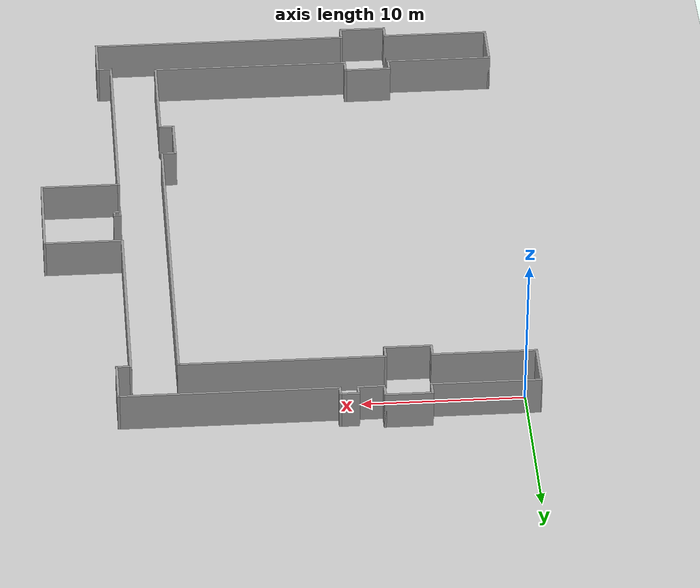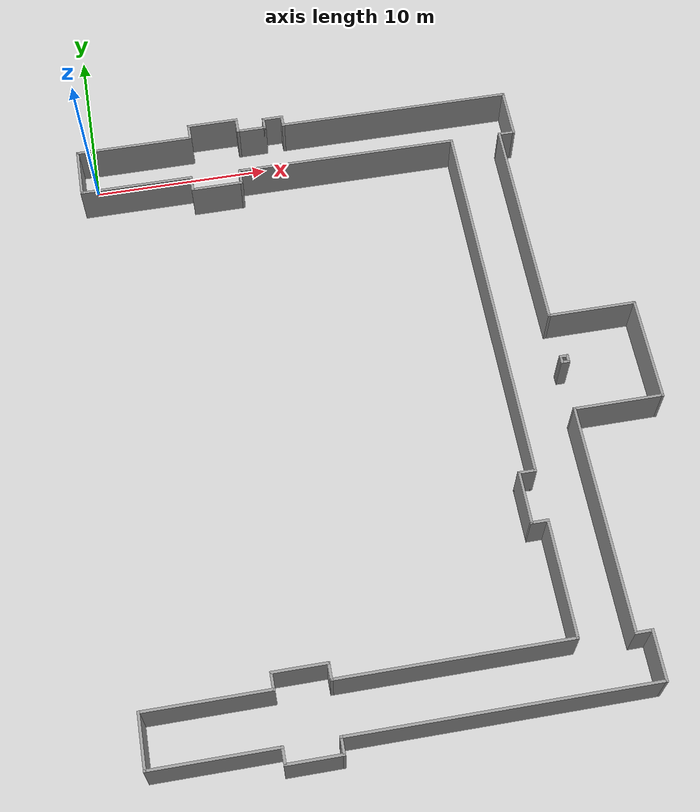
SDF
<?xml version="1.0"?>
<sdf version="1.4">
<world name="racecar_tunnel">

  <include>
    <uri>model://sun</uri>
  </include>

  <gui>
    <camera name='main'>
      <pose>0 0 10 0 1.571 0</pose>
    </camera>
  </gui>

  <model name="ground_plane">
    <static>true</static>
    <link name="link">
      <collision name="collision">
        <geometry>
          <plane>
            <normal>0 0 1</normal>
            <size>150 150</size>
          </plane>
        </geometry>
        <surface>
          <friction>
            <ode>
              <mu>100</mu>
              <mu2>50</mu2>
            </ode>
          </friction>
        </surface>
      </collision>
      <visual name="visual">
        <cast_shadows>false</cast_shadows>
        <geometry>
          <plane>
            <normal>0 0 1</normal>
            <size>150 150</size>
          </plane>
        </geometry>
        <material>
          <script>
            <uri>file://media/materials/scripts/gazebo.material</uri>
            <name>Gazebo/Grey</name>
          </script>
        </material>
      </visual>
    </link>
  </model>

  <include>
    <uri>model://racecar_description/models/hallway_model</uri>
    <pose>14 -16.9 0 0 0 4.712</pose>
  </include>

</world>
</sdf>

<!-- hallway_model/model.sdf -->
<sdf version='1.6'>
  <model name='hallway_model'>
    <pose frame=''>0.022425 -0.089331 0 0 -0 0</pose>
    <link name='Wall_0'>
      <collision name='Wall_0_Collision'>
        <geometry>
          <box>
            <size>3 0.15 2.5</size>
          </box>
        </geometry>
        <pose frame=''>0 0 1.25 0 -0 0</pose>
      </collision>
      <visual name='Wall_0_Visual'>
        <pose frame=''>0 0 1.25 0 -0 0</pose>
        <geometry>
          <box>
            <size>3 0.15 2.5</size>
          </box>
        </geometry>
        <material>
          <script>
            <uri>file://media/materials/scripts/gazebo.material</uri>
            <name>Gazebo/Grey</name>
          </script>
          <ambient>1 1 1 1</ambient>
        </material>
        <meta>
          <layer>0</layer>
        </meta>
      </visual>
      <pose frame=''>-16.825 -14.775 0 0 -0 0</pose>
    </link>
    <link name='Wall_1'>
      <collision name='Wall_1_Collision'>
        <geometry>
          <box>
            <size>6.5 0.15 2.5</size>
          </box>
        </geometry>
        <pose frame=''>0 0 1.25 0 -0 0</pose>
      </collision>
      <visual name='Wall_1_Visual'>
        <pose frame=''>0 0 1.25 0 -0 0</pose>
        <geometry>
          <box>
            <size>6.5 0.15 2.5</size>
          </box>
        </geometry>
        <material>
          <script>
            <uri>file://media/materials/scripts/gazebo.material</uri>
            <name>Gazebo/Grey</name>
          </script>
          <ambient>1 1 1 1</ambient>
        </material>
        <meta>
          <layer>0</layer>
        </meta>
      </visual>
      <pose frame=''>-15.4 -11.6 0 0 -0 1.5708</pose>
    </link>
    <link name='Wall_10'>
      <collision name='Wall_10_Collision'>
        <geometry>
          <box>
            <size>21.75 0.15 2.5</size>
          </box>
        </geometry>
        <pose frame=''>0 0 1.25 0 -0 0</pose>
      </collision>
      <visual name='Wall_10_Visual'>
        <pose frame=''>0 0 1.25 0 -0 0</pose>
        <geometry>
          <box>
            <size>21.75 0.15 2.5</size>
          </box>
        </geometry>
        <material>
          <script>
            <uri>file://media/materials/scripts/gazebo.material</uri>
            <name>Gazebo/Grey</name>
          </script>
          <ambient>1 1 1 1</ambient>
        </material>
        <meta>
          <layer>0</layer>
        </meta>
      </visual>
      <pose frame=''>-4.6 7.025 0 0 -0 0</pose>
    </link>
    <link name='Wall_11'>
      <collision name='Wall_11_Collision'>
        <geometry>
          <box>
            <size>1 0.15 2.5</size>
          </box>
        </geometry>
        <pose frame=''>0 0 1.25 0 -0 0</pose>
      </collision>
      <visual name='Wall_11_Visual'>
        <pose frame=''>0 0 1.25 0 -0 0</pose>
        <geometry>
          <box>
            <size>1 0.15 2.5</size>
          </box>
        </geometry>
        <material>
          <script>
            <uri>file://media/materials/scripts/gazebo.material</uri>
            <name>Gazebo/Grey</name>
          </script>
          <ambient>1 1 1 1</ambient>
        </material>
        <meta>
          <layer>0</layer>
        </meta>
      </visual>
      <pose frame=''>6.2 6.6 0 0 -0 -1.5708</pose>
    </link>
    <link name='Wall_12'>
      <collision name='Wall_12_Collision'>
        <geometry>
          <box>
            <size>3 0.15 2.5</size>
          </box>
        </geometry>
        <pose frame=''>0 0 1.25 0 -0 0</pose>
      </collision>
      <visual name='Wall_12_Visual'>
        <pose frame=''>0 0 1.25 0 -0 0</pose>
        <geometry>
          <box>
            <size>3 0.15 2.5</size>
          </box>
        </geometry>
        <material>
          <script>
            <uri>file://media/materials/scripts/gazebo.material</uri>
            <name>Gazebo/Grey</name>
          </script>
          <ambient>1 1 1 1</ambient>
        </material>
        <meta>
          <layer>0</layer>
        </meta>
      </visual>
      <pose frame=''>7.625 6.175 0 0 -0 0</pose>
    </link>
    <link name='Wall_13'>
      <collision name='Wall_13_Collision'>
        <geometry>
          <box>
            <size>1 0.15 2.5</size>
          </box>
        </geometry>
        <pose frame=''>0 0 1.25 0 -0 0</pose>
      </collision>
      <visual name='Wall_13_Visual'>
        <pose frame=''>0 0 1.25 0 -0 0</pose>
        <geometry>
          <box>
            <size>1 0.15 2.5</size>
          </box>
        </geometry>
        <material>
          <script>
            <uri>file://media/materials/scripts/gazebo.material</uri>
            <name>Gazebo/Grey</name>
          </script>
          <ambient>1 1 1 1</ambient>
        </material>
        <meta>
          <layer>0</layer>
        </meta>
      </visual>
      <pose frame=''>9.05 6.6 0 0 -0 1.5708</pose>
    </link>
    <link name='Wall_14'>
      <collision name='Wall_14_Collision'>
        <geometry>
          <box>
            <size>6.5 0.15 2.5</size>
          </box>
        </geometry>
        <pose frame=''>0 0 1.25 0 -0 0</pose>
      </collision>
      <visual name='Wall_14_Visual'>
        <pose frame=''>0 0 1.25 0 -0 0</pose>
        <geometry>
          <box>
            <size>6.5 0.15 2.5</size>
          </box>
        </geometry>
        <material>
          <script>
            <uri>file://media/materials/scripts/gazebo.material</uri>
            <name>Gazebo/Grey</name>
          </script>
          <ambient>1 1 1 1</ambient>
        </material>
        <meta>
          <layer>0</layer>
        </meta>
      </visual>
      <pose frame=''>12.225 7.025 0 0 -0 0</pose>
    </link>
    <link name='Wall_15'>
      <collision name='Wall_15_Collision'>
        <geometry>
          <box>
            <size>12.5 0.15 2.5</size>
          </box>
        </geometry>
        <pose frame=''>0 0 1.25 0 -0 0</pose>
      </collision>
      <visual name='Wall_15_Visual'>
        <pose frame=''>0 0 1.25 0 -0 0</pose>
        <geometry>
          <box>
            <size>12.5 0.15 2.5</size>
          </box>
        </geometry>
        <material>
          <script>
            <uri>file://media/materials/scripts/gazebo.material</uri>
            <name>Gazebo/Grey</name>
          </script>
          <ambient>1 1 1 1</ambient>
        </material>
        <meta>
          <layer>0</layer>
        </meta>
      </visual>
      <pose frame=''>15.4 0.85 0 0 -0 -1.5708</pose>
    </link>
    <link name='Wall_16'>
      <collision name='Wall_16_Collision'>
        <geometry>
          <box>
            <size>1 0.15 2.5</size>
          </box>
        </geometry>
        <pose frame=''>0 0 1.25 0 -0 0</pose>
      </collision>
      <visual name='Wall_16_Visual'>
        <pose frame=''>0 0 1.25 0 -0 0</pose>
        <geometry>
          <box>
            <size>1 0.15 2.5</size>
          </box>
        </geometry>
        <material>
          <script>
            <uri>file://media/materials/scripts/gazebo.material</uri>
            <name>Gazebo/Grey</name>
          </script>
          <ambient>1 1 1 1</ambient>
        </material>
        <meta>
          <layer>0</layer>
        </meta>
      </visual>
      <pose frame=''>14.975 -5.325 0 0 -0 3.14159</pose>
    </link>
    <link name='Wall_17'>
      <collision name='Wall_17_Collision'>
        <geometry>
          <box>
            <size>3 0.15 2.5</size>
          </box>
        </geometry>
        <pose frame=''>0 0 1.25 0 -0 0</pose>
      </collision>
      <visual name='Wall_17_Visual'>
        <pose frame=''>0 0 1.25 0 -0 0</pose>
        <geometry>
          <box>
            <size>3 0.15 2.5</size>
          </box>
        </geometry>
        <material>
          <script>
            <uri>file://media/materials/scripts/gazebo.material</uri>
            <name>Gazebo/Grey</name>
          </script>
          <ambient>1 1 1 1</ambient>
        </material>
        <meta>
          <layer>0</layer>
        </meta>
      </visual>
      <pose frame=''>14.55 -6.75 0 0 -0 -1.5708</pose>
    </link>
    <link name='Wall_18'>
      <collision name='Wall_18_Collision'>
        <geometry>
          <box>
            <size>1 0.15 2.5</size>
          </box>
        </geometry>
        <pose frame=''>0 0 1.25 0 -0 0</pose>
      </collision>
      <visual name='Wall_18_Visual'>
        <pose frame=''>0 0 1.25 0 -0 0</pose>
        <geometry>
          <box>
            <size>1 0.15 2.5</size>
          </box>
        </geometry>
        <material>
          <script>
            <uri>file://media/materials/scripts/gazebo.material</uri>
            <name>Gazebo/Grey</name>
          </script>
          <ambient>1 1 1 1</ambient>
        </material>
        <meta>
          <layer>0</layer>
        </meta>
      </visual>
      <pose frame=''>14.975 -8.175 0 0 -0 0</pose>
    </link>
    <link name='Wall_19'>
      <collision name='Wall_19_Collision'>
        <geometry>
          <box>
            <size>6.75 0.15 2.5</size>
          </box>
        </geometry>
        <pose frame=''>0 0 1.25 0 -0 0</pose>
      </collision>
      <visual name='Wall_19_Visual'>
        <pose frame=''>0 0 1.25 0 -0 0</pose>
        <geometry>
          <box>
            <size>6.75 0.15 2.5</size>
          </box>
        </geometry>
        <material>
          <script>
            <uri>file://media/materials/scripts/gazebo.material</uri>
            <name>Gazebo/Grey</name>
          </script>
          <ambient>1 1 1 1</ambient>
        </material>
        <meta>
          <layer>0</layer>
        </meta>
      </visual>
      <pose frame=''>15.4 -11.475 0 0 -0 -1.5708</pose>
    </link>
    <link name='Wall_2'>
      <collision name='Wall_2_Collision'>
        <geometry>
          <box>
            <size>1 0.15 2.5</size>
          </box>
        </geometry>
        <pose frame=''>0 0 1.25 0 -0 0</pose>
      </collision>
      <visual name='Wall_2_Visual'>
        <pose frame=''>0 0 1.25 0 -0 0</pose>
        <geometry>
          <box>
            <size>1 0.15 2.5</size>
          </box>
        </geometry>
        <material>
          <script>
            <uri>file://media/materials/scripts/gazebo.material</uri>
            <name>Gazebo/Grey</name>
          </script>
          <ambient>1 1 1 1</ambient>
        </material>
        <meta>
          <layer>0</layer>
        </meta>
      </visual>
      <pose frame=''>-14.975 -8.425 0 0 -0 0</pose>
    </link>
    <link name='Wall_20'>
      <collision name='Wall_20_Collision'>
        <geometry>
          <box>
            <size>3 0.15 2.5</size>
          </box>
        </geometry>
        <pose frame=''>0 0 1.25 0 -0 0</pose>
      </collision>
      <visual name='Wall_20_Visual'>
        <pose frame=''>0 0 1.25 0 -0 0</pose>
        <geometry>
          <box>
            <size>3 0.15 2.5</size>
          </box>
        </geometry>
        <material>
          <script>
            <uri>file://media/materials/scripts/gazebo.material</uri>
            <name>Gazebo/Grey</name>
          </script>
          <ambient>1 1 1 1</ambient>
        </material>
        <meta>
          <layer>0</layer>
        </meta>
      </visual>
      <pose frame=''>16.825 -14.775 0 0 -0 0</pose>
    </link>
    <link name='Wall_21'>
      <collision name='Wall_21_Collision'>
        <geometry>
          <box>
            <size>6.75 0.15 2.5</size>
          </box>
        </geometry>
        <pose frame=''>0 0 1.25 0 -0 0</pose>
      </collision>
      <visual name='Wall_21_Visual'>
        <pose frame=''>0 0 1.25 0 -0 0</pose>
        <geometry>
          <box>
            <size>6.75 0.15 2.5</size>
          </box>
        </geometry>
        <material>
          <script>
            <uri>file://media/materials/scripts/gazebo.material</uri>
            <name>Gazebo/Grey</name>
          </script>
          <ambient>1 1 1 1</ambient>
        </material>
        <meta>
          <layer>0</layer>
        </meta>
      </visual>
      <pose frame=''>18.25 -11.475 0 0 -0 1.5708</pose>
    </link>
    <link name='Wall_22'>
      <collision name='Wall_22_Collision'>
        <geometry>
          <box>
            <size>1 0.15 2.5</size>
          </box>
        </geometry>
        <pose frame=''>0 0 1.25 0 -0 0</pose>
      </collision>
      <visual name='Wall_22_Visual'>
        <pose frame=''>0 0 1.25 0 -0 0</pose>
        <geometry>
          <box>
            <size>1 0.15 2.5</size>
          </box>
        </geometry>
        <material>
          <script>
            <uri>file://media/materials/scripts/gazebo.material</uri>
            <name>Gazebo/Grey</name>
          </script>
          <ambient>1 1 1 1</ambient>
        </material>
        <meta>
          <layer>0</layer>
        </meta>
      </visual>
      <pose frame=''>18.675 -8.175 0 0 -0 0</pose>
    </link>
    <link name='Wall_23'>
      <collision name='Wall_23_Collision'>
        <geometry>
          <box>
            <size>3 0.15 2.5</size>
          </box>
        </geometry>
        <pose frame=''>0 0 1.25 0 -0 0</pose>
      </collision>
      <visual name='Wall_23_Visual'>
        <pose frame=''>0 0 1.25 0 -0 0</pose>
        <geometry>
          <box>
            <size>3 0.15 2.5</size>
          </box>
        </geometry>
        <material>
          <script>
            <uri>file://media/materials/scripts/gazebo.material</uri>
            <name>Gazebo/Grey</name>
          </script>
          <ambient>1 1 1 1</ambient>
        </material>
        <meta>
          <layer>0</layer>
        </meta>
      </visual>
      <pose frame=''>19.1 -6.75 0 0 -0 1.5708</pose>
    </link>
    <link name='Wall_26'>
      <collision name='Wall_26_Collision'>
        <geometry>
          <box>
            <size>1 0.15 2.5</size>
          </box>
        </geometry>
        <pose frame=''>0 0 1.25 0 -0 0</pose>
      </collision>
      <visual name='Wall_26_Visual'>
        <pose frame=''>0 0 1.25 0 -0 0</pose>
        <geometry>
          <box>
            <size>1 0.15 2.5</size>
          </box>
        </geometry>
        <material>
          <script>
            <uri>file://media/materials/scripts/gazebo.material</uri>
            <name>Gazebo/Grey</name>
          </script>
          <ambient>1 1 1 1</ambient>
        </material>
        <meta>
          <layer>0</layer>
        </meta>
      </visual>
      <pose frame=''>18.675 -5.325 0 0 -0 3.14159</pose>
    </link>
    <link name='Wall_27'>
      <collision name='Wall_27_Collision'>
        <geometry>
          <box>
            <size>16.25 0.15 2.5</size>
          </box>
        </geometry>
        <pose frame=''>0 0 1.25 0 -0 0</pose>
      </collision>
      <visual name='Wall_27_Visual'>
        <pose frame=''>0 0 1.25 0 -0 0</pose>
        <geometry>
          <box>
            <size>16.25 0.15 2.5</size>
          </box>
        </geometry>
        <material>
          <script>
            <uri>file://media/materials/scripts/gazebo.material</uri>
            <name>Gazebo/Grey</name>
          </script>
          <ambient>1 1 1 1</ambient>
        </material>
        <meta>
          <layer>0</layer>
        </meta>
      </visual>
      <pose frame=''>18.25 2.725 0 0 -0 1.5708</pose>
    </link>
    <link name='Wall_28'>
      <collision name='Wall_28_Collision'>
        <geometry>
          <box>
            <size>2.75 0.15 2.5</size>
          </box>
        </geometry>
        <pose frame=''>0 0 1.25 0 -0 0</pose>
      </collision>
      <visual name='Wall_28_Visual'>
        <pose frame=''>0 0 1.25 0 -0 0</pose>
        <geometry>
          <box>
            <size>2.75 0.15 2.5</size>
          </box>
        </geometry>
        <material>
          <script>
            <uri>file://media/materials/scripts/gazebo.material</uri>
            <name>Gazebo/Grey</name>
          </script>
          <ambient>1 1 1 1</ambient>
        </material>
        <meta>
          <layer>0</layer>
        </meta>
      </visual>
      <pose frame=''>16.95 10.775 0 0 -0 3.14159</pose>
    </link>
    <link name='Wall_29'>
      <collision name='Wall_29_Collision'>
        <geometry>
          <box>
            <size>1 0.15 2.5</size>
          </box>
        </geometry>
        <pose frame=''>0 0 1.25 0 -0 0</pose>
      </collision>
      <visual name='Wall_29_Visual'>
        <pose frame=''>0 0 1.25 0 -0 0</pose>
        <geometry>
          <box>
            <size>1 0.15 2.5</size>
          </box>
        </geometry>
        <material>
          <script>
            <uri>file://media/materials/scripts/gazebo.material</uri>
            <name>Gazebo/Grey</name>
          </script>
          <ambient>1 1 1 1</ambient>
        </material>
        <meta>
          <layer>0</layer>
        </meta>
      </visual>
      <pose frame=''>15.65 10.35 0 0 -0 -1.5708</pose>
    </link>
    <link name='Wall_3'>
      <collision name='Wall_3_Collision'>
        <geometry>
          <box>
            <size>3 0.15 2.5</size>
          </box>
        </geometry>
        <pose frame=''>0 0 1.25 0 -0 0</pose>
      </collision>
      <visual name='Wall_3_Visual'>
        <pose frame=''>0 0 1.25 0 -0 0</pose>
        <geometry>
          <box>
            <size>3 0.15 2.5</size>
          </box>
        </geometry>
        <material>
          <script>
            <uri>file://media/materials/scripts/gazebo.material</uri>
            <name>Gazebo/Grey</name>
          </script>
          <ambient>1 1 1 1</ambient>
        </material>
        <meta>
          <layer>0</layer>
        </meta>
      </visual>
      <pose frame=''>-14.55 -7 0 0 -0 1.5708</pose>
    </link>
    <link name='Wall_30'>
      <collision name='Wall_30_Collision'>
        <geometry>
          <box>
            <size>12.75 0.15 2.5</size>
          </box>
        </geometry>
        <pose frame=''>0 0 1.25 0 -0 0</pose>
      </collision>
      <visual name='Wall_30_Visual'>
        <pose frame=''>0 0 1.25 0 -0 0</pose>
        <geometry>
          <box>
            <size>12.75 0.15 2.5</size>
          </box>
        </geometry>
        <material>
          <script>
            <uri>file://media/materials/scripts/gazebo.material</uri>
            <name>Gazebo/Grey</name>
          </script>
          <ambient>1 1 1 1</ambient>
        </material>
        <meta>
          <layer>0</layer>
        </meta>
      </visual>
      <pose frame=''>9.35 9.925 0 0 -0 3.14159</pose>
    </link>
    <link name='Wall_31'>
      <collision name='Wall_31_Collision'>
        <geometry>
          <box>
            <size>5 0.15 2.5</size>
          </box>
        </geometry>
        <pose frame=''>0 0 1.25 0 -0 0</pose>
      </collision>
      <visual name='Wall_31_Visual'>
        <pose frame=''>0 0 1.25 0 -0 0</pose>
        <geometry>
          <box>
            <size>5 0.15 2.5</size>
          </box>
        </geometry>
        <material>
          <script>
            <uri>file://media/materials/scripts/gazebo.material</uri>
            <name>Gazebo/Grey</name>
          </script>
          <ambient>1 1 1 1</ambient>
        </material>
        <meta>
          <layer>0</layer>
        </meta>
      </visual>
      <pose frame=''>3.05 12.35 0 0 -0 1.5708</pose>
    </link>
    <link name='Wall_32'>
      <collision name='Wall_32_Collision'>
        <geometry>
          <box>
            <size>6 0.15 2.5</size>
          </box>
        </geometry>
        <pose frame=''>0 0 1.25 0 -0 0</pose>
      </collision>
      <visual name='Wall_32_Visual'>
        <pose frame=''>0 0 1.25 0 -0 0</pose>
        <geometry>
          <box>
            <size>6 0.15 2.5</size>
          </box>
        </geometry>
        <material>
          <script>
            <uri>file://media/materials/scripts/gazebo.material</uri>
            <name>Gazebo/Grey</name>
          </script>
          <ambient>1 1 1 1</ambient>
        </material>
        <meta>
          <layer>0</layer>
        </meta>
      </visual>
      <pose frame=''>0.125001 14.775 0 0 -0 3.14159</pose>
    </link>
    <link name='Wall_33'>
      <collision name='Wall_33_Collision'>
        <geometry>
          <box>
            <size>5 0.15 2.5</size>
          </box>
        </geometry>
        <pose frame=''>0 0 1.25 0 -0 0</pose>
      </collision>
      <visual name='Wall_33_Visual'>
        <pose frame=''>0 0 1.25 0 -0 0</pose>
        <geometry>
          <box>
            <size>5 0.15 2.5</size>
          </box>
        </geometry>
        <material>
          <script>
            <uri>file://media/materials/scripts/gazebo.material</uri>
            <name>Gazebo/Grey</name>
          </script>
          <ambient>1 1 1 1</ambient>
        </material>
        <meta>
          <layer>0</layer>
        </meta>
      </visual>
      <pose frame=''>-2.8 12.35 0 0 -0 -1.5708</pose>
    </link>
    <link name='Wall_34'>
      <collision name='Wall_34_Collision'>
        <geometry>
          <box>
            <size>12.75 0.15 2.5</size>
          </box>
        </geometry>
        <pose frame=''>0 0 1.25 0 -0 0</pose>
      </collision>
      <visual name='Wall_34_Visual'>
        <pose frame=''>0 0 1.25 0 -0 0</pose>
        <geometry>
          <box>
            <size>12.75 0.15 2.5</size>
          </box>
        </geometry>
        <material>
          <script>
            <uri>file://media/materials/scripts/gazebo.material</uri>
            <name>Gazebo/Grey</name>
          </script>
          <ambient>1 1 1 1</ambient>
        </material>
        <meta>
          <layer>0</layer>
        </meta>
      </visual>
      <pose frame=''>-9.1 9.925 0 0 -0 3.14159</pose>
    </link>
    <link name='Wall_35'>
      <collision name='Wall_35_Collision'>
        <geometry>
          <box>
            <size>1 0.15 2.5</size>
          </box>
        </geometry>
        <pose frame=''>0 0 1.25 0 -0 0</pose>
      </collision>
      <visual name='Wall_35_Visual'>
        <pose frame=''>0 0 1.25 0 -0 0</pose>
        <geometry>
          <box>
            <size>1 0.15 2.5</size>
          </box>
        </geometry>
        <material>
          <script>
            <uri>file://media/materials/scripts/gazebo.material</uri>
            <name>Gazebo/Grey</name>
          </script>
          <ambient>1 1 1 1</ambient>
        </material>
        <meta>
          <layer>0</layer>
        </meta>
      </visual>
      <pose frame=''>-15.4 10.35 0 0 -0 1.5708</pose>
    </link>
    <link name='Wall_36'>
      <collision name='Wall_36_Collision'>
        <geometry>
          <box>
            <size>3 0.15 2.5</size>
          </box>
        </geometry>
        <pose frame=''>0 0 1.25 0 -0 0</pose>
      </collision>
      <visual name='Wall_36_Visual'>
        <pose frame=''>0 0 1.25 0 -0 0</pose>
        <geometry>
          <box>
            <size>3 0.15 2.5</size>
          </box>
        </geometry>
        <material>
          <script>
            <uri>file://media/materials/scripts/gazebo.material</uri>
            <name>Gazebo/Grey</name>
          </script>
          <ambient>1 1 1 1</ambient>
        </material>
        <meta>
          <layer>0</layer>
        </meta>
      </visual>
      <pose frame=''>-16.825 10.775 0 0 -0 3.14159</pose>
    </link>
    <link name='Wall_37'>
      <collision name='Wall_37_Collision'>
        <geometry>
          <box>
            <size>13.5 0.15 2.5</size>
          </box>
        </geometry>
        <pose frame=''>0 0 1.25 0 -0 0</pose>
      </collision>
      <visual name='Wall_37_Visual'>
        <pose frame=''>0 0 1.25 0 -0 0</pose>
        <geometry>
          <box>
            <size>13.5 0.15 2.5</size>
          </box>
        </geometry>
        <material>
          <script>
            <uri>file://media/materials/scripts/gazebo.material</uri>
            <name>Gazebo/Grey</name>
          </script>
          <ambient>1 1 1 1</ambient>
        </material>
        <meta>
          <layer>0</layer>
        </meta>
      </visual>
      <pose frame=''>-18.25 4.1 0 0 -0 -1.5708</pose>
    </link>
    <link name='Wall_40'>
      <collision name='Wall_40_Collision'>
        <geometry>
          <box>
            <size>0.75 0.15 2.5</size>
          </box>
        </geometry>
        <pose frame=''>0 0 1.25 0 -0 0</pose>
      </collision>
      <visual name='Wall_40_Visual'>
        <pose frame=''>0 0 1.25 0 -0 0</pose>
        <geometry>
          <box>
            <size>0.75 0.15 2.5</size>
          </box>
        </geometry>
        <material>
          <script>
            <uri>file://media/materials/scripts/gazebo.material</uri>
            <name>Gazebo/Grey</name>
          </script>
          <ambient>1 1 1 1</ambient>
        </material>
        <meta>
          <layer>0</layer>
        </meta>
      </visual>
      <pose frame=''>-18.55 -2.575 0 0 -0 3.14159</pose>
    </link>
    <link name='Wall_41'>
      <collision name='Wall_41_Collision'>
        <geometry>
          <box>
            <size>1.25 0.15 2.5</size>
          </box>
        </geometry>
        <pose frame=''>0 0 1.25 0 -0 0</pose>
      </collision>
      <visual name='Wall_41_Visual'>
        <pose frame=''>0 0 1.25 0 -0 0</pose>
        <geometry>
          <box>
            <size>1.25 0.15 2.5</size>
          </box>
        </geometry>
        <material>
          <script>
            <uri>file://media/materials/scripts/gazebo.material</uri>
            <name>Gazebo/Grey</name>
          </script>
          <ambient>1 1 1 1</ambient>
        </material>
        <meta>
          <layer>0</layer>
        </meta>
      </visual>
      <pose frame=''>-18.85 -3.125 0 0 -0 -1.5708</pose>
    </link>
    <link name='Wall_42'>
      <collision name='Wall_42_Collision'>
        <geometry>
          <box>
            <size>0.75 0.15 2.5</size>
          </box>
        </geometry>
        <pose frame=''>0 0 1.25 0 -0 0</pose>
      </collision>
      <visual name='Wall_42_Visual'>
        <pose frame=''>0 0 1.25 0 -0 0</pose>
        <geometry>
          <box>
            <size>0.75 0.15 2.5</size>
          </box>
        </geometry>
        <material>
          <script>
            <uri>file://media/materials/scripts/gazebo.material</uri>
            <name>Gazebo/Grey</name>
          </script>
          <ambient>1 1 1 1</ambient>
        </material>
        <meta>
          <layer>0</layer>
        </meta>
      </visual>
      <pose frame=''>-18.55 -3.675 0 0 -0 0</pose>
    </link>
    <link name='Wall_43'>
      <collision name='Wall_43_Collision'>
        <geometry>
          <box>
            <size>1.75 0.15 2.5</size>
          </box>
        </geometry>
        <pose frame=''>0 0 1.25 0 -0 0</pose>
      </collision>
      <visual name='Wall_43_Visual'>
        <pose frame=''>0 0 1.25 0 -0 0</pose>
        <geometry>
          <box>
            <size>1.75 0.15 2.5</size>
          </box>
        </geometry>
        <material>
          <script>
            <uri>file://media/materials/scripts/gazebo.material</uri>
            <name>Gazebo/Grey</name>
          </script>
          <ambient>1 1 1 1</ambient>
        </material>
        <meta>
          <layer>0</layer>
        </meta>
      </visual>
      <pose frame=''>-18.25 -4.475 0 0 -0 -1.5708</pose>
    </link>
    <link name='Wall_44'>
      <collision name='Wall_44_Collision'>
        <geometry>
          <box>
            <size>1 0.15 2.5</size>
          </box>
        </geometry>
        <pose frame=''>0 0 1.25 0 -0 0</pose>
      </collision>
      <visual name='Wall_44_Visual'>
        <pose frame=''>0 0 1.25 0 -0 0</pose>
        <geometry>
          <box>
            <size>1 0.15 2.5</size>
          </box>
        </geometry>
        <material>
          <script>
            <uri>file://media/materials/scripts/gazebo.material</uri>
            <name>Gazebo/Grey</name>
          </script>
          <ambient>1 1 1 1</ambient>
        </material>
        <meta>
          <layer>0</layer>
        </meta>
      </visual>
      <pose frame=''>-18.675 -5.275 0 0 -0 3.14159</pose>
    </link>
    <link name='Wall_45'>
      <collision name='Wall_45_Collision'>
        <geometry>
          <box>
            <size>3 0.15 2.5</size>
          </box>
        </geometry>
        <pose frame=''>0 0 1.25 0 -0 0</pose>
      </collision>
      <visual name='Wall_45_Visual'>
        <pose frame=''>0 0 1.25 0 -0 0</pose>
        <geometry>
          <box>
            <size>3 0.15 2.5</size>
          </box>
        </geometry>
        <material>
          <script>
            <uri>file://media/materials/scripts/gazebo.material</uri>
            <name>Gazebo/Grey</name>
          </script>
          <ambient>1 1 1 1</ambient>
        </material>
        <meta>
          <layer>0</layer>
        </meta>
      </visual>
      <pose frame=''>-19.1 -6.7 0 0 -0 -1.5708</pose>
    </link>
    <link name='Wall_46'>
      <collision name='Wall_46_Collision'>
        <geometry>
          <box>
            <size>1 0.15 2.5</size>
          </box>
        </geometry>
        <pose frame=''>0 0 1.25 0 -0 0</pose>
      </collision>
      <visual name='Wall_46_Visual'>
        <pose frame=''>0 0 1.25 0 -0 0</pose>
        <geometry>
          <box>
            <size>1 0.15 2.5</size>
          </box>
        </geometry>
        <material>
          <script>
            <uri>file://media/materials/scripts/gazebo.material</uri>
            <name>Gazebo/Grey</name>
          </script>
          <ambient>1 1 1 1</ambient>
        </material>
        <meta>
          <layer>0</layer>
        </meta>
      </visual>
      <pose frame=''>-18.675 -8.125 0 0 -0 0</pose>
    </link>
    <link name='Wall_47'>
      <collision name='Wall_47_Collision'>
        <geometry>
          <box>
            <size>6.75 0.15 2.5</size>
          </box>
        </geometry>
        <pose frame=''>0 0 1.25 0 -0 0</pose>
      </collision>
      <visual name='Wall_47_Visual'>
        <pose frame=''>0 0 1.25 0 -0 0</pose>
        <geometry>
          <box>
            <size>6.75 0.15 2.5</size>
          </box>
        </geometry>
        <material>
          <script>
            <uri>file://media/materials/scripts/gazebo.material</uri>
            <name>Gazebo/Grey</name>
          </script>
          <ambient>1 1 1 1</ambient>
        </material>
        <meta>
          <layer>0</layer>
        </meta>
      </visual>
      <pose frame=''>-18.25 -11.425 0 0 -0 -1.5708</pose>
    </link>
    <link name='Wall_49'>
      <collision name='Wall_49_Collision'>
        <geometry>
          <box>
            <size>0.5 0.15 2.5</size>
          </box>
        </geometry>
        <pose frame=''>0 0 1.25 0 -0 0</pose>
      </collision>
      <visual name='Wall_49_Visual'>
        <pose frame=''>0 0 1.25 0 -0 0</pose>
        <geometry>
          <box>
            <size>0.5 0.15 2.5</size>
          </box>
        </geometry>
        <material>
          <script>
            <uri>file://media/materials/scripts/gazebo.material</uri>
            <name>Gazebo/Grey</name>
          </script>
          <ambient>1 1 1 1</ambient>
        </material>
        <meta>
          <layer>0</layer>
        </meta>
      </visual>
      <pose frame=''>-0.16841 10.1248 0 0 -0 -1.5708</pose>
    </link>
    <link name='Wall_50'>
      <collision name='Wall_50_Collision'>
        <geometry>
          <box>
            <size>0.5 0.15 2.5</size>
          </box>
        </geometry>
        <pose frame=''>0 0 1.25 0 -0 0</pose>
      </collision>
      <visual name='Wall_50_Visual'>
        <pose frame=''>0 0 1.25 0 -0 0</pose>
        <geometry>
          <box>
            <size>0.5 0.15 2.5</size>
          </box>
        </geometry>
        <material>
          <script>
            <uri>file://media/materials/scripts/gazebo.material</uri>
            <name>Gazebo/Grey</name>
          </script>
          <ambient>1 1 1 1</ambient>
        </material>
        <meta>
          <layer>0</layer>
        </meta>
      </visual>
      <pose frame=''>0.00659 9.94982 0 0 -0 0</pose>
    </link>
    <link name='Wall_51'>
      <collision name='Wall_51_Collision'>
        <geometry>
          <box>
            <size>0.5 0.15 2.5</size>
          </box>
        </geometry>
        <pose frame=''>0 0 1.25 0 -0 0</pose>
      </collision>
      <visual name='Wall_51_Visual'>
        <pose frame=''>0 0 1.25 0 -0 0</pose>
        <geometry>
          <box>
            <size>0.5 0.15 2.5</size>
          </box>
        </geometry>
        <material>
          <script>
            <uri>file://media/materials/scripts/gazebo.material</uri>
            <name>Gazebo/Grey</name>
          </script>
          <ambient>1 1 1 1</ambient>
        </material>
        <meta>
          <layer>0</layer>
        </meta>
      </visual>
      <pose frame=''>0.18159 10.1248 0 0 -0 1.5708</pose>
    </link>
    <link name='Wall_52'>
      <collision name='Wall_52_Collision'>
        <geometry>
          <box>
            <size>0.5 0.15 2.5</size>
          </box>
        </geometry>
        <pose frame=''>0 0 1.25 0 -0 0</pose>
      </collision>
      <visual name='Wall_52_Visual'>
        <pose frame=''>0 0 1.25 0 -0 0</pose>
        <geometry>
          <box>
            <size>0.5 0.15 2.5</size>
          </box>
        </geometry>
        <material>
          <script>
            <uri>file://media/materials/scripts/gazebo.material</uri>
            <name>Gazebo/Grey</name>
          </script>
          <ambient>1 1 1 1</ambient>
        </material>
        <meta>
          <layer>0</layer>
        </meta>
      </visual>
      <pose frame=''>0.00659 10.2998 0 0 -0 3.14159</pose>
    </link>
    <link name='Wall_8'>
      <collision name='Wall_8_Collision'>
        <geometry>
          <box>
            <size>1 0.15 2.5</size>
          </box>
        </geometry>
        <pose frame=''>0 0 1.25 0 -0 0</pose>
      </collision>
      <visual name='Wall_8_Visual'>
        <pose frame=''>0 0 1.25 0 -0 0</pose>
        <geometry>
          <box>
            <size>1 0.15 2.5</size>
          </box>
        </geometry>
        <material>
          <script>
            <uri>file://media/materials/scripts/gazebo.material</uri>
            <name>Gazebo/Grey</name>
          </script>
          <ambient>1 1 1 1</ambient>
        </material>
        <meta>
          <layer>0</layer>
        </meta>
      </visual>
      <pose frame=''>-14.975 -5.575 0 0 -0 3.14159</pose>
    </link>
    <link name='Wall_9'>
      <collision name='Wall_9_Collision'>
        <geometry>
          <box>
            <size>12.75 0.15 2.5</size>
          </box>
        </geometry>
        <pose frame=''>0 0 1.25 0 -0 0</pose>
      </collision>
      <visual name='Wall_9_Visual'>
        <pose frame=''>0 0 1.25 0 -0 0</pose>
        <geometry>
          <box>
            <size>12.75 0.15 2.5</size>
          </box>
        </geometry>
        <material>
          <script>
            <uri>file://media/materials/scripts/gazebo.material</uri>
            <name>Gazebo/Grey</name>
          </script>
          <ambient>1 1 1 1</ambient>
        </material>
        <meta>
          <layer>0</layer>
        </meta>
      </visual>
      <pose frame=''>-15.4 0.725 0 0 -0 1.5708</pose>
    </link>
    <static>1</static>
  </model>
</sdf>
